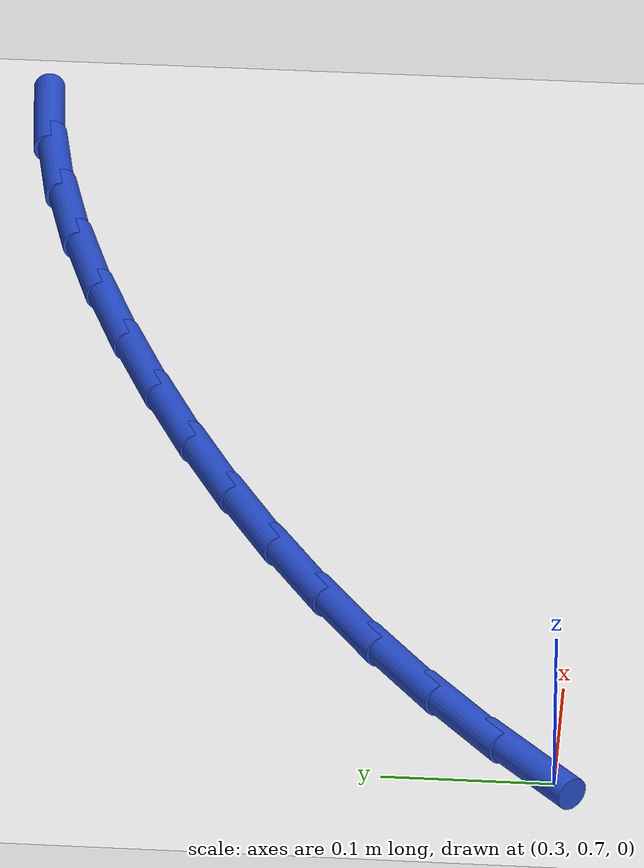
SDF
<sdf version="1.6">
 <world name="default">
  <model name="ground_plane">
   <static>1</static>
   <link name="link">
    <collision name="collision">
     <geometry><plane><normal>0 0 1</normal><size>100 100</size></plane></geometry>
     <surface><friction><ode><mu>100</mu><mu2>50</mu2></ode></friction></surface>
    </collision>
    <visual name="visual">
     <cast_shadows>0</cast_shadows>
     <geometry><plane><normal>0 0 1</normal><size>100 100</size></plane></geometry>
     <material>
      <script><uri>file://media/materials/scripts/gazebo.material</uri><name>Gazebo/WhiteGlow</name></script>
     </material>
    </visual>
   </link>
  </model>
  <model name="line">
   <link name="link_13">
    <pose>0.30603609140501864 0.7150360169876149 0.01 0 1.57 0.7268810619683396</pose>
    <collision name="collision">
     <geometry><cylinder><radius>0.01</radius><length>0.08</length></cylinder></geometry>
    </collision>
    <visual name="visual">
     <material>
      <script><name>Gazebo/Blue</name><uri>file://media/materials/scripts/gazebo.material</uri></script>
     </material>
     <geometry><cylinder><radius>0.01</radius><length>0.08</length></cylinder></geometry>
    </visual>
   </link>
   <link name="link_14">
    <pose>0.3517319781012096 0.7556741147912369 0.01 0 1.57 0.6731637388342947</pose>
    <collision name="collision">
     <geometry><cylinder><radius>0.01</radius><length>0.08</length></cylinder></geometry>
    </collision>
    <visual name="visual">
     <material>
      <script><name>Gazebo/Blue</name><uri>file://media/materials/scripts/gazebo.material</uri></script>
     </material>
     <geometry><cylinder><radius>0.01</radius><length>0.08</length></cylinder></geometry>
    </visual>
   </link>
   <link name="link_15">
    <pose>0.39981059442369365 0.7940128036615998 0.01 0 1.57 0.6226246950063357</pose>
    <collision name="collision">
     <geometry><cylinder><radius>0.01</radius><length>0.08</length></cylinder></geometry>
    </collision>
    <visual name="visual">
     <material>
      <script><name>Gazebo/Blue</name><uri>file://media/materials/scripts/gazebo.material</uri></script>
     </material>
     <geometry><cylinder><radius>0.01</radius><length>0.08</length></cylinder></geometry>
    </visual>
   </link>
   <link name="link_16">
    <pose>0.45007638141653455 0.830097549900459 0.01 0 1.57 0.5751495486240102</pose>
    <collision name="collision">
     <geometry><cylinder><radius>0.01</radius><length>0.08</length></cylinder></geometry>
    </collision>
    <visual name="visual">
     <material>
      <script><name>Gazebo/Blue</name><uri>file://media/materials/scripts/gazebo.material</uri></script>
     </material>
     <geometry><cylinder><radius>0.01</radius><length>0.08</length></cylinder></geometry>
    </visual>
   </link>
   <link name="link_17">
    <pose>0.5023337801237969 0.8639738198095711 0.01 0 1.57 0.5305840599645973</pose>
    <collision name="collision">
     <geometry><cylinder><radius>0.01</radius><length>0.08</length></cylinder></geometry>
    </collision>
    <visual name="visual">
     <material>
      <script><name>Gazebo/Blue</name><uri>file://media/materials/scripts/gazebo.material</uri></script>
     </material>
     <geometry><cylinder><radius>0.01</radius><length>0.08</length></cylinder></geometry>
    </visual>
   </link>
   <link name="link_18">
    <pose>0.5563872315895447 0.8956870796906921 0.01 0 1.57 0.4887480601711978</pose>
    <collision name="collision">
     <geometry><cylinder><radius>0.01</radius><length>0.08</length></cylinder></geometry>
    </collision>
    <visual name="visual">
     <material>
      <script><name>Gazebo/Blue</name><uri>file://media/materials/scripts/gazebo.material</uri></script>
     </material>
     <geometry><cylinder><radius>0.01</radius><length>0.08</length></cylinder></geometry>
    </visual>
   </link>
   <link name="link_19">
    <pose>0.6120411768578427 0.9252827958455783 0.01 0 1.57 0.44944648250055746</pose>
    <collision name="collision">
     <geometry><cylinder><radius>0.01</radius><length>0.08</length></cylinder></geometry>
    </collision>
    <visual name="visual">
     <material>
      <script><name>Gazebo/Blue</name><uri>file://media/materials/scripts/gazebo.material</uri></script>
     </material>
     <geometry><cylinder><radius>0.01</radius><length>0.08</length></cylinder></geometry>
    </visual>
   </link>
   <link name="link_20">
    <pose>0.6691000569727543 0.9528064345759855 0.01 0 1.57 0.41247764686675864</pose>
    <collision name="collision">
     <geometry><cylinder><radius>0.01</radius><length>0.08</length></cylinder></geometry>
    </collision>
    <visual name="visual">
     <material>
      <script><name>Gazebo/Blue</name><uri>file://media/materials/scripts/gazebo.material</uri></script>
     </material>
     <geometry><cylinder><radius>0.01</radius><length>0.08</length></cylinder></geometry>
    </visual>
   </link>
   <link name="link_21">
    <pose>0.7273683129783441 0.9783034621836699 0.01 0 1.57 0.3773862846178841</pose>
    <collision name="collision">
     <geometry><cylinder><radius>0.01</radius><length>0.08</length></cylinder></geometry>
    </collision>
    <visual name="visual">
     <material>
      <script><name>Gazebo/Blue</name><uri>file://media/materials/scripts/gazebo.material</uri></script>
     </material>
     <geometry><cylinder><radius>0.01</radius><length>0.08</length></cylinder></geometry>
    </visual>
   </link>
   <link name="link_22">
    <pose>0.7866467240915467 1.0018005465773507 0.01 0 1.57 0.33929087379297146</pose>
    <collision name="collision">
     <geometry><cylinder><radius>0.01</radius><length>0.08</length></cylinder></geometry>
    </collision>
    <visual name="visual">
     <material>
      <script><name>Gazebo/Blue</name><uri>file://media/materials/scripts/gazebo.material</uri></script>
     </material>
     <geometry><cylinder><radius>0.01</radius><length>0.08</length></cylinder></geometry>
    </visual>
   </link>
   <link name="link_23">
    <pose>0.8466699862445402 1.022985109842318 0.01 0 1.57 0.29345051818518975</pose>
    <collision name="collision">
     <geometry><cylinder><radius>0.01</radius><length>0.08</length></cylinder></geometry>
    </collision>
    <visual name="visual">
     <material>
      <script><name>Gazebo/Blue</name><uri>file://media/materials/scripts/gazebo.material</uri></script>
     </material>
     <geometry><cylinder><radius>0.01</radius><length>0.08</length></cylinder></geometry>
    </visual>
   </link>
   <link name="link_24">
    <pose>0.9071154500124763 1.0412501853551832 0.01 0 1.57 0.23864281406724155</pose>
    <collision name="collision">
     <geometry><cylinder><radius>0.01</radius><length>0.08</length></cylinder></geometry>
    </collision>
    <visual name="visual">
     <material>
      <script><name>Gazebo/Blue</name><uri>file://media/materials/scripts/gazebo.material</uri></script>
     </material>
     <geometry><cylinder><radius>0.01</radius><length>0.08</length></cylinder></geometry>
    </visual>
   </link>
   <link name="link_25">
    <pose>0.9676585627553856 1.0559790361280341 0.01 0 1.57 0.17357626723667013</pose>
    <collision name="collision">
     <geometry><cylinder><radius>0.01</radius><length>0.08</length></cylinder></geometry>
    </collision>
    <visual name="visual">
     <material>
      <script><name>Gazebo/Blue</name><uri>file://media/materials/scripts/gazebo.material</uri></script>
     </material>
     <geometry><cylinder><radius>0.01</radius><length>0.08</length></cylinder></geometry>
    </visual>
   </link>
   <link name="link_26">
    <pose>1.0279747718332983 1.0665549251729574 0.01 0 1.57 0.0968468205736869</pose>
    <collision name="collision">
     <geometry><cylinder><radius>0.01</radius><length>0.08</length></cylinder></geometry>
    </collision>
    <visual name="visual">
     <material>
      <script><name>Gazebo/Blue</name><uri>file://media/materials/scripts/gazebo.material</uri></script>
     </material>
     <geometry><cylinder><radius>0.01</radius><length>0.08</length></cylinder></geometry>
    </visual>
   </link>
  </model>
 </world>
</sdf>
